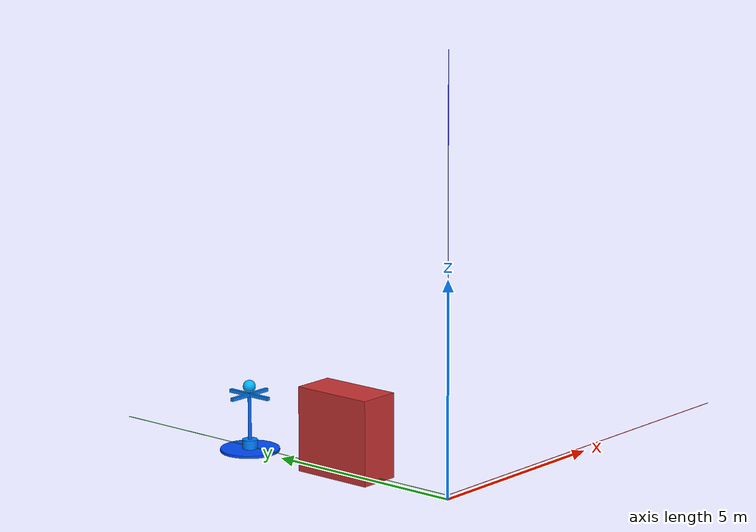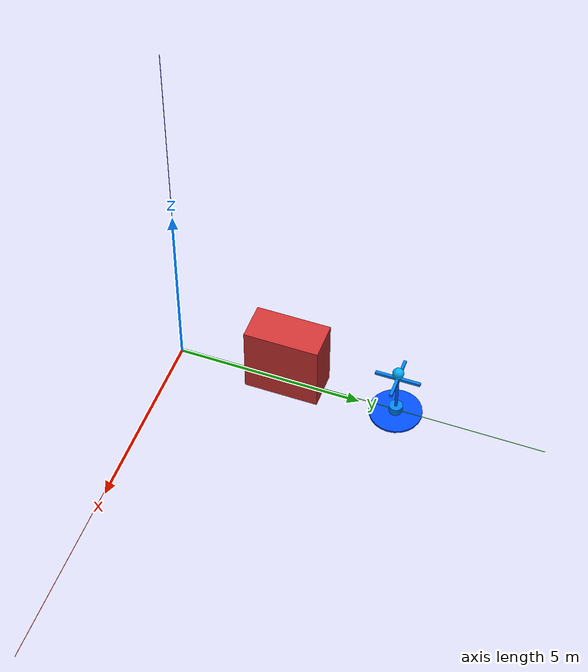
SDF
<sdf version="1.9">
 <world name="iris_runway">
  <physics name="1ms" type="ignore">
   <max_step_size>0.001</max_step_size>
   <real_time_factor>1.0</real_time_factor>
  </physics>
  <plugin filename="gz-sim-physics-system" name="gz::sim::systems::Physics"/>
  <plugin filename="gz-sim-sensors-system" name="gz::sim::systems::Sensors">
   <render_engine>ogre2</render_engine>
  </plugin>
  <plugin filename="gz-sim-user-commands-system" name="gz::sim::systems::UserCommands"/>
  <plugin filename="gz-sim-scene-broadcaster-system" name="gz::sim::systems::SceneBroadcaster"/>
  <plugin filename="gz-sim-imu-system" name="gz::sim::systems::Imu"/>
  <plugin filename="gz-sim-navsat-system" name="gz::sim::systems::NavSat"/>
  <scene><ambient>1.0 1.0 1.0</ambient><background>0.8 0.8 0.8</background></scene>
  <spherical_coordinates>
   <latitude_deg>-35.363262</latitude_deg>
   <longitude_deg>149.165237</longitude_deg>
   <elevation>584</elevation>
   <heading_deg>0</heading_deg>
   <surface_model>EARTH_WGS84</surface_model>
  </spherical_coordinates>
  <light type="directional" name="sun">
   <pose>0 0 10 0 0 0</pose>
   <diffuse>0.8 0.8 0.8 1</diffuse>
   <specular>0.8 0.8 0.8 1</specular>
   <attenuation>
    <range>1000</range>
    <constant>0.9</constant>
    <linear>0.01</linear>
    <quadratic>0.001</quadratic>
   </attenuation>
   <direction>-0.5 0.1 -0.9</direction>
  </light>
  <model name="axes">
   <static>1</static>
   <link name="link">
    <visual name="r">
     <cast_shadows>0</cast_shadows>
     <pose>5 0 0.1 0 0 0</pose>
     <geometry><box><size>10 0.01 0.01</size></box></geometry>
     <material>
      <ambient>1 0 0 0.8</ambient>
      <diffuse>1 0 0 0.8</diffuse>
      <emissive>1 0 0 0.8</emissive>
      <specular>0.5 0.5 0.5 0.8</specular>
     </material>
    </visual>
    <visual name="g">
     <cast_shadows>0</cast_shadows>
     <pose>0 5 0.1 0 0 0</pose>
     <geometry><box><size>0.01 10 0.01</size></box></geometry>
     <material>
      <ambient>0 1 0 0.8</ambient>
      <diffuse>0 1 0 0.8</diffuse>
      <emissive>0 1 0 0.8</emissive>
      <specular>0.5 0.5 0.5 0.8</specular>
     </material>
    </visual>
    <visual name="b">
     <cast_shadows>0</cast_shadows>
     <pose>0 0 5.1 0 0 0</pose>
     <geometry><box><size>0.01 0.01 10</size></box></geometry>
     <material>
      <ambient>0 0 1 0.8</ambient>
      <diffuse>0 0 1 0.8</diffuse>
      <emissive>0 0 1 0.8</emissive>
      <specular>0.5 0.5 0.5 0.8</specular>
     </material>
    </visual>
    <sensor name="navsat_sensor" type="navsat"><always_on>1</always_on><update_rate>1</update_rate></sensor>
   </link>
  </model>
  <model name="obstacle_box">
   <static>true</static>
   <pose>0 3.0 1.0 0 0 0</pose>
   <link name="box">
    <collision name="collision"><geometry><box><size>1.0 2.0 2.0</size></box></geometry></collision>
    <visual name="visual">
     <geometry><box><size>1.0 2.0 2.0</size></box></geometry>
     <material>
      <ambient>0.8 0.2 0.2 1</ambient>
      <diffuse>0.8 0.2 0.2 1</diffuse>
      <emissive>0.1 0.0 0.0 1</emissive>
      <specular>0.5 0.5 0.5 1</specular>
     </material>
    </visual>
   </link>
  </model>
  <model name="goal_marker">
   <static>true</static>
   <pose>0 6.0 0 0 0 0</pose>
   <link name="goal_link">
    <visual name="goal_pad">
     <pose>0 0 0.03 0 0 0</pose>
     <geometry><cylinder><radius>0.7</radius><length>0.06</length></cylinder></geometry>
     <material>
      <ambient>0.0 0.2 1.0 1</ambient>
      <diffuse>0.0 0.3 1.0 1</diffuse>
      <emissive>0.0 0.1 0.5 1</emissive>
      <specular>0.5 0.5 0.5 1</specular>
     </material>
    </visual>
    <visual name="goal_center">
     <pose>0 0 0.15 0 0 0</pose>
     <geometry><cylinder><radius>0.18</radius><length>0.25</length></cylinder></geometry>
     <material>
      <ambient>0.0 0.4 1.0 1</ambient>
      <diffuse>0.0 0.5 1.0 1</diffuse>
      <emissive>0.0 0.2 0.8 1</emissive>
      <specular>0.5 0.5 0.5 1</specular>
     </material>
    </visual>
    <visual name="goal_pole">
     <pose>0 0 0.7 0 0 0</pose>
     <geometry><cylinder><radius>0.04</radius><length>1.4</length></cylinder></geometry>
     <material>
      <ambient>0.0 0.3 1.0 1</ambient>
      <diffuse>0.0 0.4 1.0 1</diffuse>
      <emissive>0.0 0.1 0.5 1</emissive>
      <specular>0.5 0.5 0.5 1</specular>
     </material>
    </visual>
    <visual name="goal_arm_x">
     <pose>0 0 1.35 0 0 0</pose>
     <geometry><box><size>1.2 0.08 0.08</size></box></geometry>
     <material>
      <ambient>0.0 0.4 1.0 1</ambient>
      <diffuse>0.0 0.5 1.0 1</diffuse>
      <emissive>0.0 0.2 0.8 1</emissive>
      <specular>0.5 0.5 0.5 1</specular>
     </material>
    </visual>
    <visual name="goal_arm_y">
     <pose>0 0 1.35 0 0 1.5708</pose>
     <geometry><box><size>1.2 0.08 0.08</size></box></geometry>
     <material>
      <ambient>0.0 0.4 1.0 1</ambient>
      <diffuse>0.0 0.5 1.0 1</diffuse>
      <emissive>0.0 0.2 0.8 1</emissive>
      <specular>0.5 0.5 0.5 1</specular>
     </material>
    </visual>
    <visual name="goal_top">
     <pose>0 0 1.55 0 0 0</pose>
     <geometry><sphere><radius>0.15</radius></sphere></geometry>
     <material>
      <ambient>0.0 0.6 1.0 1</ambient>
      <diffuse>0.0 0.7 1.0 1</diffuse>
      <emissive>0.0 0.3 1.0 1</emissive>
      <specular>0.5 0.5 0.5 1</specular>
     </material>
    </visual>
   </link>
  </model>
 </world>
</sdf>
